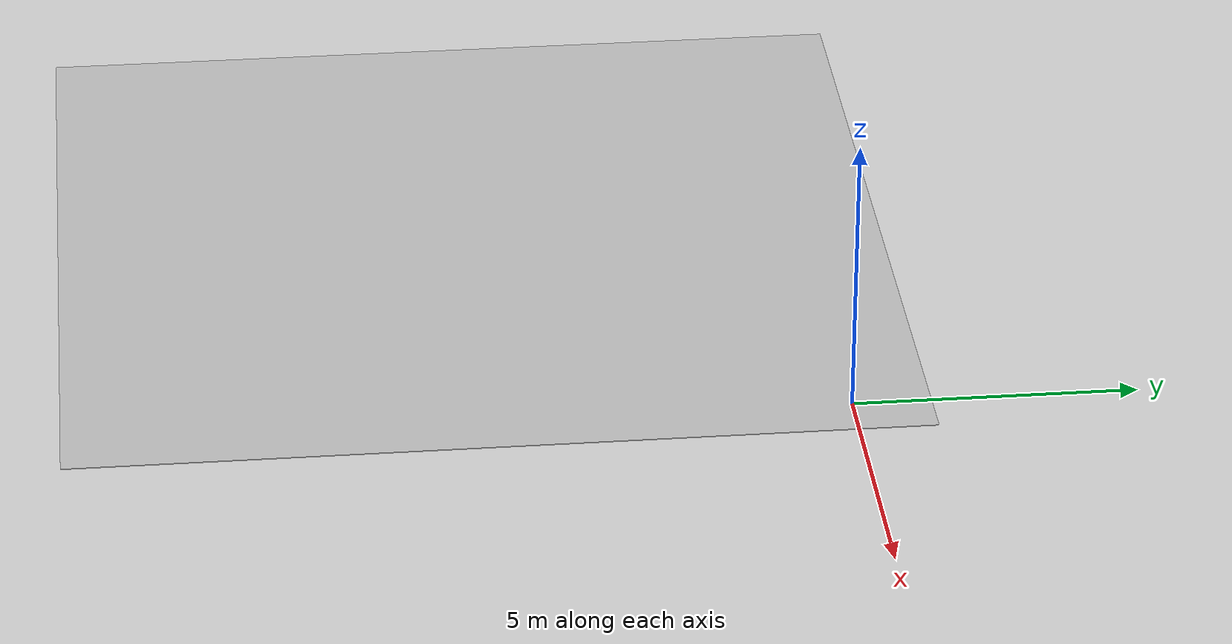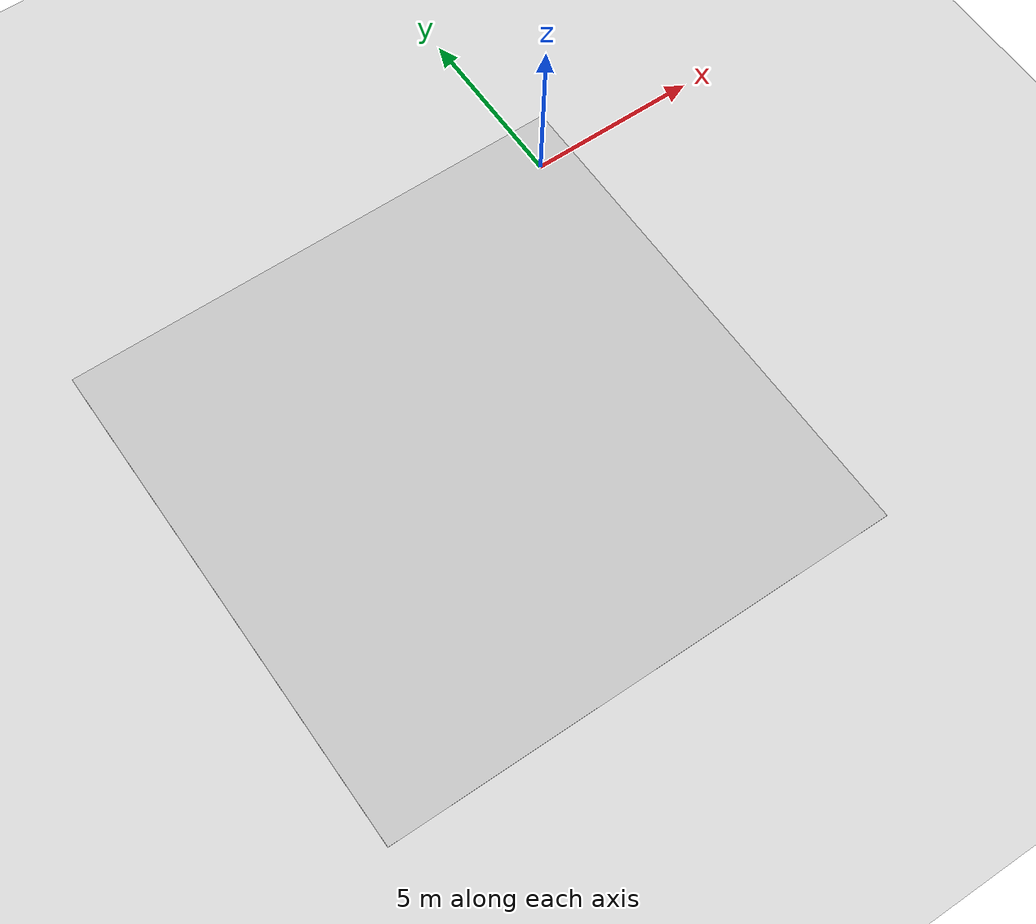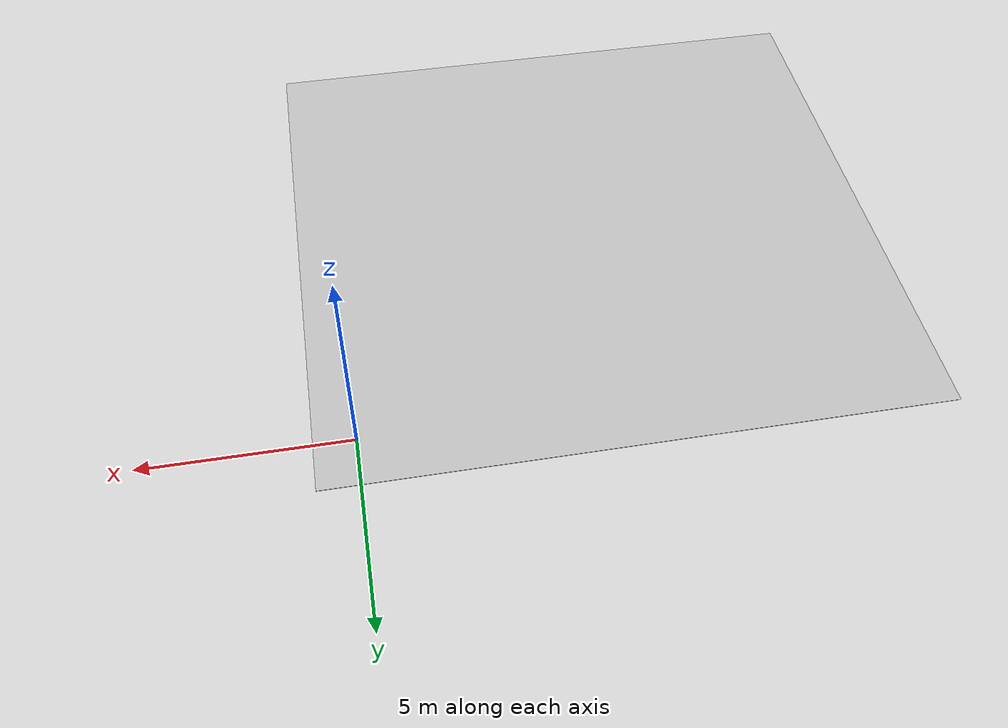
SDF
<?xml version="1.0" ?>
<sdf version="1.5">
  <world name="track">

    <!-- A global light source -->
    <include>
      <uri>model://sun</uri>
    </include>

    <include>
      <pose>0 0 -0.1 0 0 0</pose>
      <uri>model://ground_plane</uri>
    </include>

    <!-- A track -->
    <include>
      <pose>-6.5 -6.15 0.1 0 0 0</pose>
      <uri>model://track</uri>
      <static>true</static>
    </include>

  </world>
</sdf>

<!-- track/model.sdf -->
<sdf version="1.5">
  <model name="tracks">
    <link name="link">
      <collision name="collision">
        <geometry>
          <plane>
            <normal>0 0 1</normal>
            <size>15 15</size>
          </plane>
        </geometry>
        <surface>
          <friction>
            <ode>
              <mu>100</mu>
              <mu2>50</mu2>
            </ode>
          </friction>
        </surface>
      </collision>
      <visual name="visual">
        <cast_shadows>false</cast_shadows>
        <geometry>
          <plane>
            <normal>0 0 1</normal>
            <size>15 15</size>
          </plane>
        </geometry>
        <material>
         <script>
            <uri>model://track/materials/scripts</uri>
            <uri>model://track/materials/textures/</uri>
            <name>track/Image</name>
         </script>
        </material>
      </visual>
    </link>
  </model>
</sdf>
